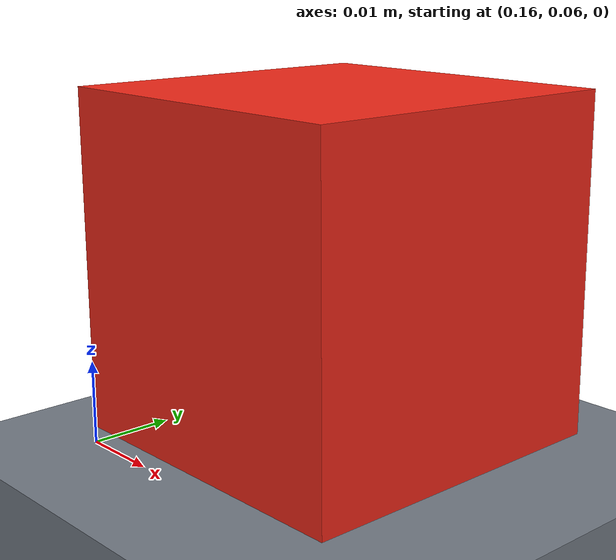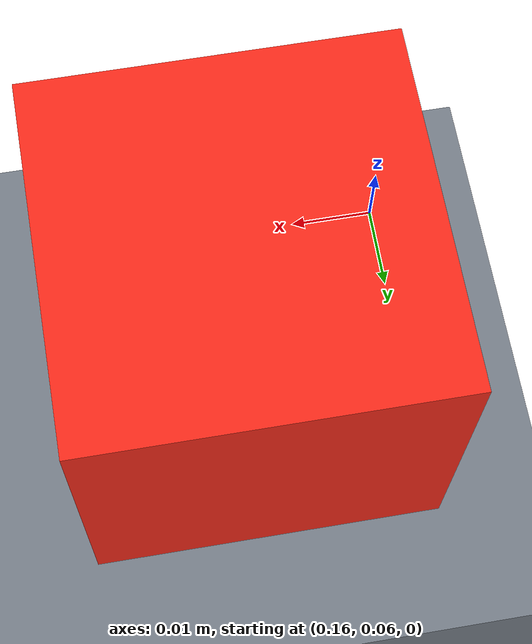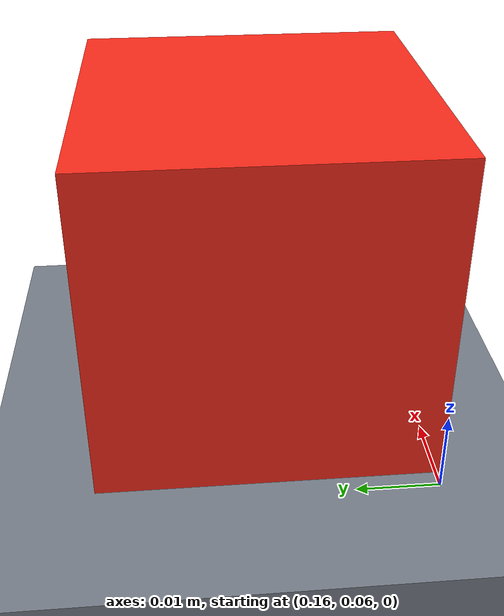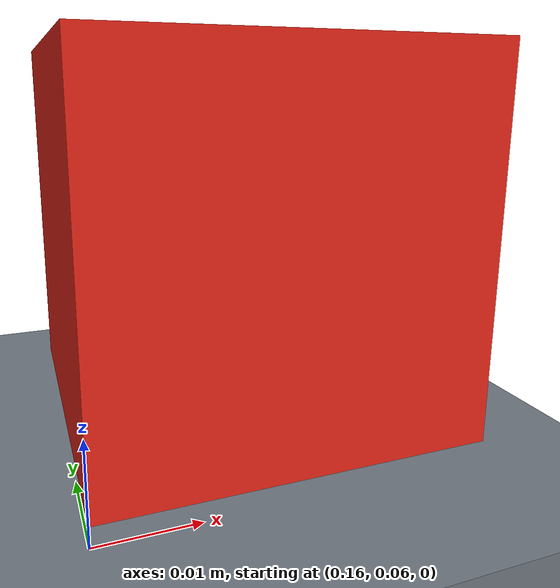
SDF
<?xml version="1.0" ?>
<sdf version="1.6">
  <world name="task2_world">
    <gui fullscreen="0">
      <camera name="task2_camera">
        <pose>0.70 -0.70 0.48 0 0.38 2.35619</pose>
        <view_controller>orbit</view_controller>
      </camera>
    </gui>
    <gravity>0 0 -9.81</gravity>
    <physics name="task2_ode" default="1" type="ode">
      <max_step_size>0.001</max_step_size>
      <real_time_update_rate>1000</real_time_update_rate>
      <real_time_factor>1.0</real_time_factor>
      <ode>
        <solver>
          <type>quick</type>
          <iters>80</iters>
          <sor>1.3</sor>
        </solver>
      </ode>
    </physics>

    <include>
      <uri>model://sun</uri>
    </include>
    <include>
      <uri>model://ground_plane</uri>
    </include>

    <plugin name="gazebo_ros_state" filename="libgazebo_ros_state.so">
      <ros><namespace>/gazebo</namespace></ros>
      <update_rate>30.0</update_rate>
    </plugin>

    <model name="task2_table">
      <static>true</static>
      <pose>0.15 0 -0.025 0 0 0</pose>
      <link name="link">
        <collision name="collision">
          <geometry><box><size>0.8 0.8 0.05</size></box></geometry>
          <surface>
            <friction><ode><mu>1.0</mu><mu2>1.0</mu2></ode></friction>
          </surface>
        </collision>
        <visual name="visual">
          <geometry><box><size>0.8 0.8 0.05</size></box></geometry>
          <material><ambient>0.35 0.38 0.42 1</ambient><diffuse>0.45 0.48 0.52 1</diffuse></material>
        </visual>
      </link>
    </model>

    <model name="task2_target">
      <static>false</static>
      <pose>0.18 0.08 0.022 0 0 0</pose>
      <link name="link">
        <inertial>
          <mass>0.05</mass>
          <inertia>
            <ixx>0.00001333</ixx><iyy>0.00001333</iyy><izz>0.00001333</izz>
          </inertia>
        </inertial>
        <collision name="collision">
          <geometry><box><size>0.04 0.04 0.04</size></box></geometry>
          <surface>
            <friction><ode><mu>1.0</mu><mu2>1.0</mu2></ode></friction>
            <contact><ode><kp>100000</kp><kd>10</kd></ode></contact>
          </surface>
        </collision>
        <visual name="visual">
          <geometry><box><size>0.04 0.04 0.04</size></box></geometry>
          <material><ambient>0.85 0.12 0.08 1</ambient><diffuse>0.95 0.16 0.10 1</diffuse></material>
        </visual>
      </link>
    </model>
  </world>
</sdf>
